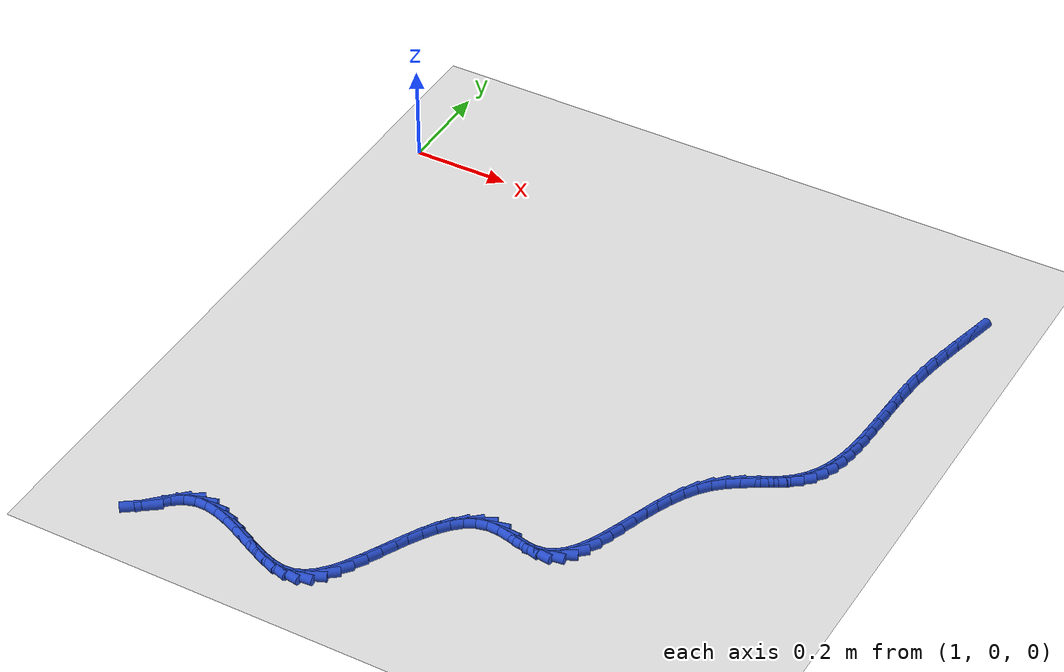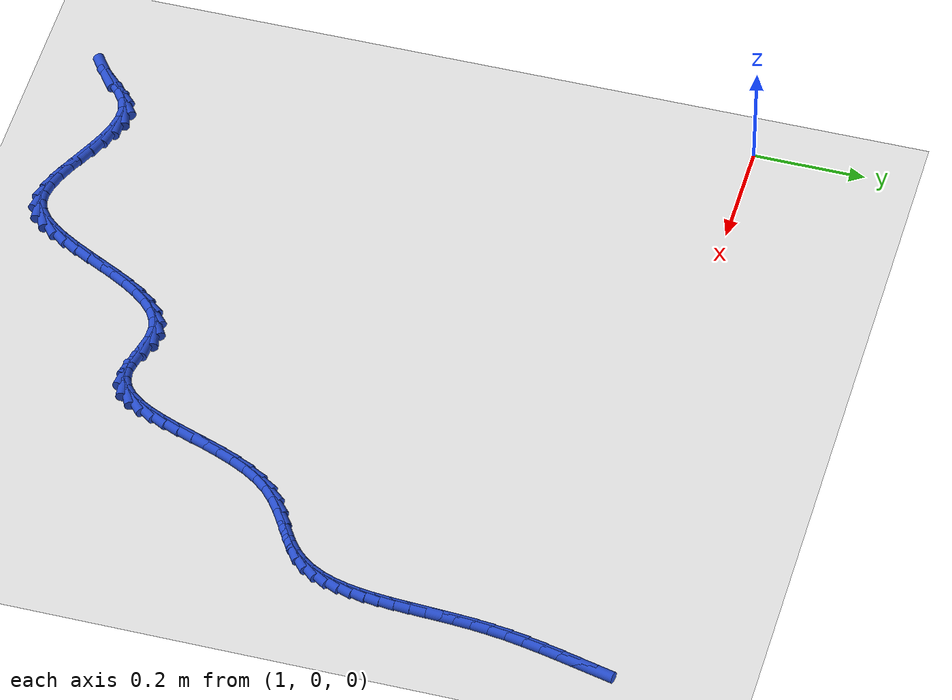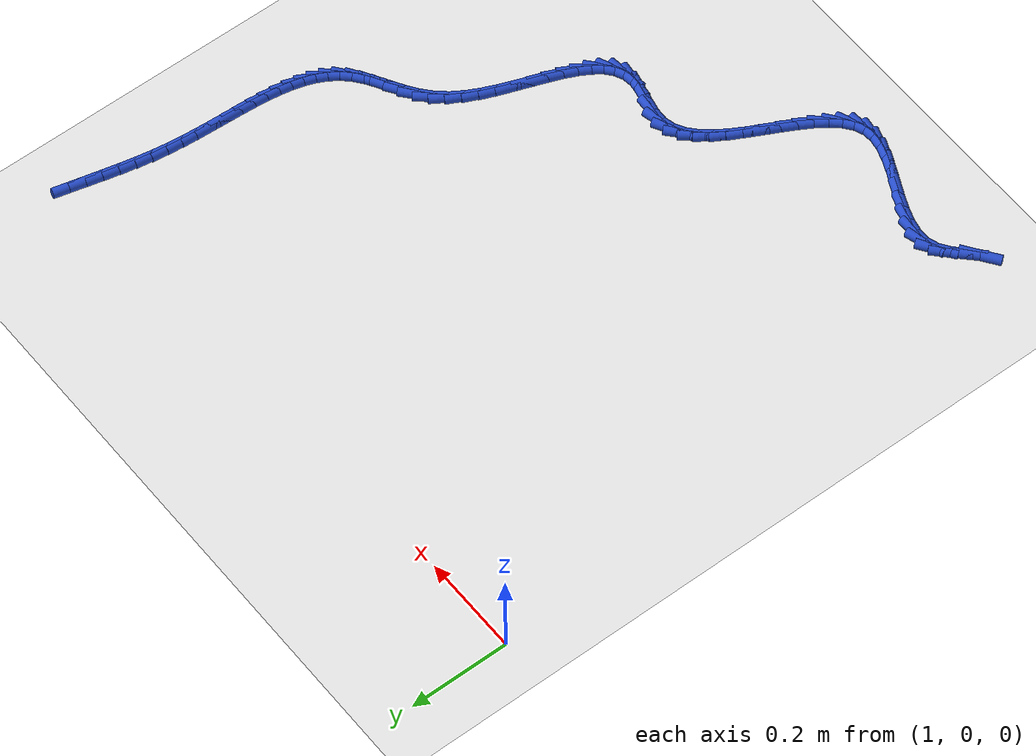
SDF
<sdf version="1.6">
 <world name="default">
  <model name="ground_plane">
   <static>1</static>
   <link name="link">
    <collision name="collision">
     <geometry><plane><normal>0 0 1</normal><size>100 100</size></plane></geometry>
     <surface><friction><ode><mu>100</mu><mu2>50</mu2></ode></friction></surface>
    </collision>
    <visual name="visual">
     <cast_shadows>0</cast_shadows>
     <geometry><plane><normal>0 0 1</normal><size>100 100</size></plane></geometry>
     <material>
      <script><uri>file://media/materials/scripts/gazebo.material</uri><name>Gazebo/WhiteGlow</name></script>
     </material>
    </visual>
   </link>
  </model>
  <model name="line">
   <link name="link_149">
    <pose>2.2256215976052123 0.027058477436590185 0.01 0 1.57 1.333727284681502</pose>
    <collision name="collision">
     <geometry><cylinder><radius>0.01</radius><length>0.08</length></cylinder></geometry>
    </collision>
    <visual name="visual">
     <material>
      <script><name>Gazebo/Blue</name><uri>file://media/materials/scripts/gazebo.material</uri></script>
     </material>
     <geometry><cylinder><radius>0.01</radius><length>0.08</length></cylinder></geometry>
    </visual>
   </link>
   <link name="link_150">
    <pose>2.218246953136106 -0.0034641418414901246 0.01 0 1.57 1.3360717553198445</pose>
    <collision name="collision">
     <geometry><cylinder><radius>0.01</radius><length>0.08</length></cylinder></geometry>
    </collision>
    <visual name="visual">
     <material>
      <script><name>Gazebo/Blue</name><uri>file://media/materials/scripts/gazebo.material</uri></script>
     </material>
     <geometry><cylinder><radius>0.01</radius><length>0.08</length></cylinder></geometry>
    </visual>
   </link>
   <link name="link_151">
    <pose>2.210850045025605 -0.03439639877539481 0.01 0 1.57 1.346496464220471</pose>
    <collision name="collision">
     <geometry><cylinder><radius>0.01</radius><length>0.08</length></cylinder></geometry>
    </collision>
    <visual name="visual">
     <material>
      <script><name>Gazebo/Blue</name><uri>file://media/materials/scripts/gazebo.material</uri></script>
     </material>
     <geometry><cylinder><radius>0.01</radius><length>0.08</length></cylinder></geometry>
    </visual>
   </link>
   <link name="link_152">
    <pose>2.2037306329552244 -0.06560290980595267 0.01 0 1.57 1.3650380783194875</pose>
    <collision name="collision">
     <geometry><cylinder><radius>0.01</radius><length>0.08</length></cylinder></geometry>
    </collision>
    <visual name="visual">
     <material>
      <script><name>Gazebo/Blue</name><uri>file://media/materials/scripts/gazebo.material</uri></script>
     </material>
     <geometry><cylinder><radius>0.01</radius><length>0.08</length></cylinder></geometry>
    </visual>
   </link>
   <link name="link_153">
    <pose>2.1971884766064766 -0.09694829137399548 0.01 0 1.57 1.3920130711602396</pose>
    <collision name="collision">
     <geometry><cylinder><radius>0.01</radius><length>0.08</length></cylinder></geometry>
    </collision>
    <visual name="visual">
     <material>
      <script><name>Gazebo/Blue</name><uri>file://media/materials/scripts/gazebo.material</uri></script>
     </material>
     <geometry><cylinder><radius>0.01</radius><length>0.08</length></cylinder></geometry>
    </visual>
   </link>
   <link name="link_154">
    <pose>2.191523335660877 -0.12829715992035212 0.01 0 1.57 1.427799531504343</pose>
    <collision name="collision">
     <geometry><cylinder><radius>0.01</radius><length>0.08</length></cylinder></geometry>
    </collision>
    <visual name="visual">
     <material>
      <script><name>Gazebo/Blue</name><uri>file://media/materials/scripts/gazebo.material</uri></script>
     </material>
     <geometry><cylinder><radius>0.01</radius><length>0.08</length></cylinder></geometry>
    </visual>
   </link>
   <link name="link_155">
    <pose>2.187028710561135 -0.15951427745770602 0.01 0 1.57 1.4651808868834704</pose>
    <collision name="collision">
     <geometry><cylinder><radius>0.01</radius><length>0.08</length></cylinder></geometry>
    </collision>
    <visual name="visual">
     <material>
      <script><name>Gazebo/Blue</name><uri>file://media/materials/scripts/gazebo.material</uri></script>
     </material>
     <geometry><cylinder><radius>0.01</radius><length>0.08</length></cylinder></geometry>
    </visual>
   </link>
   <link name="link_156">
    <pose>2.1837470716154646 -0.19047024423612238 0.01 0 1.57 1.4938609037108412</pose>
    <collision name="collision">
     <geometry><cylinder><radius>0.01</radius><length>0.08</length></cylinder></geometry>
    </collision>
    <visual name="visual">
     <material>
      <script><name>Gazebo/Blue</name><uri>file://media/materials/scripts/gazebo.material</uri></script>
     </material>
     <geometry><cylinder><radius>0.01</radius><length>0.08</length></cylinder></geometry>
    </visual>
   </link>
   <link name="link_157">
    <pose>2.1813902649362755 -0.22104334987150034 0.01 0 1.57 1.5129049713531644</pose>
    <collision name="collision">
     <geometry><cylinder><radius>0.01</radius><length>0.08</length></cylinder></geometry>
    </collision>
    <visual name="visual">
     <material>
      <script><name>Gazebo/Blue</name><uri>file://media/materials/scripts/gazebo.material</uri></script>
     </material>
     <geometry><cylinder><radius>0.01</radius><length>0.08</length></cylinder></geometry>
    </visual>
   </link>
   <link name="link_158">
    <pose>2.179647579116696 -0.2511124086026196 0.01 0 1.57 1.521953094276318</pose>
    <collision name="collision">
     <geometry><cylinder><radius>0.01</radius><length>0.08</length></cylinder></geometry>
    </collision>
    <visual name="visual">
     <material>
      <script><name>Gazebo/Blue</name><uri>file://media/materials/scripts/gazebo.material</uri></script>
     </material>
     <geometry><cylinder><radius>0.01</radius><length>0.08</length></cylinder></geometry>
    </visual>
   </link>
   <link name="link_159">
    <pose>2.178208302749855 -0.2805562346682595 0.01 0 1.57 1.520430977802554</pose>
    <collision name="collision">
     <geometry><cylinder><radius>0.01</radius><length>0.08</length></cylinder></geometry>
    </collision>
    <visual name="visual">
     <material>
      <script><name>Gazebo/Blue</name><uri>file://media/materials/scripts/gazebo.material</uri></script>
     </material>
     <geometry><cylinder><radius>0.01</radius><length>0.08</length></cylinder></geometry>
    </visual>
   </link>
   <link name="link_160">
    <pose>2.176761724428882 -0.3092536423072001 0.01 0 1.57 1.5074745505220806</pose>
    <collision name="collision">
     <geometry><cylinder><radius>0.01</radius><length>0.08</length></cylinder></geometry>
    </collision>
    <visual name="visual">
     <material>
      <script><name>Gazebo/Blue</name><uri>file://media/materials/scripts/gazebo.material</uri></script>
     </material>
     <geometry><cylinder><radius>0.01</radius><length>0.08</length></cylinder></geometry>
    </visual>
   </link>
   <link name="link_161">
    <pose>2.174997132746905 -0.3370834457582207 0.01 0 1.57 1.4818651196186232</pose>
    <collision name="collision">
     <geometry><cylinder><radius>0.01</radius><length>0.08</length></cylinder></geometry>
    </collision>
    <visual name="visual">
     <material>
      <script><name>Gazebo/Blue</name><uri>file://media/materials/scripts/gazebo.material</uri></script>
     </material>
     <geometry><cylinder><radius>0.01</radius><length>0.08</length></cylinder></geometry>
    </visual>
   </link>
   <link name="link_162">
    <pose>2.172603816297054 -0.3639244592601012 0.01 0 1.57 1.4419907520625899</pose>
    <collision name="collision">
     <geometry><cylinder><radius>0.01</radius><length>0.08</length></cylinder></geometry>
    </collision>
    <visual name="visual">
     <material>
      <script><name>Gazebo/Blue</name><uri>file://media/materials/scripts/gazebo.material</uri></script>
     </material>
     <geometry><cylinder><radius>0.01</radius><length>0.08</length></cylinder></geometry>
    </visual>
   </link>
   <link name="link_163">
    <pose>2.169271063672457 -0.38965549705162117 0.01 0 1.57 1.3858753072969408</pose>
    <collision name="collision">
     <geometry><cylinder><radius>0.01</radius><length>0.08</length></cylinder></geometry>
    </collision>
    <visual name="visual">
     <material>
      <script><name>Gazebo/Blue</name><uri>file://media/materials/scripts/gazebo.material</uri></script>
     </material>
     <geometry><cylinder><radius>0.01</radius><length>0.08</length></cylinder></geometry>
    </visual>
   </link>
   <link name="link_164">
    <pose>2.1646881634662427 -0.4141553733715604 0.01 0 1.57 1.311360536074659</pose>
    <collision name="collision">
     <geometry><cylinder><radius>0.01</radius><length>0.08</length></cylinder></geometry>
    </collision>
    <visual name="visual">
     <material>
      <script><name>Gazebo/Blue</name><uri>file://media/materials/scripts/gazebo.material</uri></script>
     </material>
     <geometry><cylinder><radius>0.01</radius><length>0.08</length></cylinder></geometry>
    </visual>
   </link>
   <link name="link_165">
    <pose>2.158544404271541 -0.4373029024586984 0.01 0 1.57 1.2165807347374298</pose>
    <collision name="collision">
     <geometry><cylinder><radius>0.01</radius><length>0.08</length></cylinder></geometry>
    </collision>
    <visual name="visual">
     <material>
      <script><name>Gazebo/Blue</name><uri>file://media/materials/scripts/gazebo.material</uri></script>
     </material>
     <geometry><cylinder><radius>0.01</radius><length>0.08</length></cylinder></geometry>
    </visual>
   </link>
   <link name="link_166">
    <pose>2.1505290746814802 -0.4589768985518149 0.01 0 1.57 1.1008745844423444</pose>
    <collision name="collision">
     <geometry><cylinder><radius>0.01</radius><length>0.08</length></cylinder></geometry>
    </collision>
    <visual name="visual">
     <material>
      <script><name>Gazebo/Blue</name><uri>file://media/materials/scripts/gazebo.material</uri></script>
     </material>
     <geometry><cylinder><radius>0.01</radius><length>0.08</length></cylinder></geometry>
    </visual>
   </link>
   <link name="link_167">
    <pose>2.1403314632891886 -0.4790561758896894 0.01 0 1.57 0.9660804048956914</pose>
    <collision name="collision">
     <geometry><cylinder><radius>0.01</radius><length>0.08</length></cylinder></geometry>
    </collision>
    <visual name="visual">
     <material>
      <script><name>Gazebo/Blue</name><uri>file://media/materials/scripts/gazebo.material</uri></script>
     </material>
     <geometry><cylinder><radius>0.01</radius><length>0.08</length></cylinder></geometry>
    </visual>
   </link>
   <link name="link_168">
    <pose>2.127640858687796 -0.4974195487111017 0.01 0 1.57 0.8176154397921168</pose>
    <collision name="collision">
     <geometry><cylinder><radius>0.01</radius><length>0.08</length></cylinder></geometry>
    </collision>
    <visual name="visual">
     <material>
      <script><name>Gazebo/Blue</name><uri>file://media/materials/scripts/gazebo.material</uri></script>
     </material>
     <geometry><cylinder><radius>0.01</radius><length>0.08</length></cylinder></geometry>
    </visual>
   </link>
   <link name="link_169">
    <pose>2.112146549470432 -0.5139458312548311 0.01 0 1.57 0.6702721823000657</pose>
    <collision name="collision">
     <geometry><cylinder><radius>0.01</radius><length>0.08</length></cylinder></geometry>
    </collision>
    <visual name="visual">
     <material>
      <script><name>Gazebo/Blue</name><uri>file://media/materials/scripts/gazebo.material</uri></script>
     </material>
     <geometry><cylinder><radius>0.01</radius><length>0.08</length></cylinder></geometry>
    </visual>
   </link>
   <link name="link_170">
    <pose>2.0936511909194424 -0.5286070518992797 0.01 0 1.57 0.5722148538214556</pose>
    <collision name="collision">
     <geometry><cylinder><radius>0.01</radius><length>0.08</length></cylinder></geometry>
    </collision>
    <visual name="visual">
     <material>
      <script><name>Gazebo/Blue</name><uri>file://media/materials/scripts/gazebo.material</uri></script>
     </material>
     <geometry><cylinder><radius>0.01</radius><length>0.08</length></cylinder></geometry>
    </visual>
   </link>
   <link name="link_171">
    <pose>2.072779019018258 -0.542050772009733 0.01 0 1.57 0.5342446240558337</pose>
    <collision name="collision">
     <geometry><cylinder><radius>0.01</radius><length>0.08</length></cylinder></geometry>
    </collision>
    <visual name="visual">
     <material>
      <script><name>Gazebo/Blue</name><uri>file://media/materials/scripts/gazebo.material</uri></script>
     </material>
     <geometry><cylinder><radius>0.01</radius><length>0.08</length></cylinder></geometry>
    </visual>
   </link>
   <link name="link_172">
    <pose>2.0505162331319204 -0.5552221721677024 0.01 0 1.57 0.5483676740057903</pose>
    <collision name="collision">
     <geometry><cylinder><radius>0.01</radius><length>0.08</length></cylinder></geometry>
    </collision>
    <visual name="visual">
     <material>
      <script><name>Gazebo/Blue</name><uri>file://media/materials/scripts/gazebo.material</uri></script>
     </material>
     <geometry><cylinder><radius>0.01</radius><length>0.08</length></cylinder></geometry>
    </visual>
   </link>
   <link name="link_173">
    <pose>2.027850609826262 -0.5690677297855049 0.01 0 1.57 0.6110211469548562</pose>
    <collision name="collision">
     <geometry><cylinder><radius>0.01</radius><length>0.08</length></cylinder></geometry>
    </collision>
    <visual name="visual">
     <material>
      <script><name>Gazebo/Blue</name><uri>file://media/materials/scripts/gazebo.material</uri></script>
     </material>
     <geometry><cylinder><radius>0.01</radius><length>0.08</length></cylinder></geometry>
    </visual>
   </link>
   <link name="link_174">
    <pose>2.0057699256671158 -0.5845339222754566 0.01 0 1.57 0.7212780371123108</pose>
    <collision name="collision">
     <geometry><cylinder><radius>0.01</radius><length>0.08</length></cylinder></geometry>
    </collision>
    <visual name="visual">
     <material>
      <script><name>Gazebo/Blue</name><uri>file://media/materials/scripts/gazebo.material</uri></script>
     </material>
     <geometry><cylinder><radius>0.01</radius><length>0.08</length></cylinder></geometry>
    </visual>
   </link>
   <link name="link_175">
    <pose>1.9852619572203154 -0.6025672270498744 0.01 0 1.57 0.8692368693558528</pose>
    <collision name="collision">
     <geometry><cylinder><radius>0.01</radius><length>0.08</length></cylinder></geometry>
    </collision>
    <visual name="visual">
     <material>
      <script><name>Gazebo/Blue</name><uri>file://media/materials/scripts/gazebo.material</uri></script>
     </material>
     <geometry><cylinder><radius>0.01</radius><length>0.08</length></cylinder></geometry>
    </visual>
   </link>
   <link name="link_176">
    <pose>1.9671854617201905 -0.6239606002781991 0.01 0 1.57 1.0004553980119146</pose>
    <collision name="collision">
     <geometry><cylinder><radius>0.01</radius><length>0.08</length></cylinder></geometry>
    </collision>
    <visual name="visual">
     <material>
      <script><name>Gazebo/Blue</name><uri>file://media/materials/scripts/gazebo.material</uri></script>
     </material>
     <geometry><cylinder><radius>0.01</radius><length>0.08</length></cylinder></geometry>
    </visual>
   </link>
   <link name="link_177">
    <pose>1.9514915272435642 -0.6484269545770361 0.01 0 1.57 1.0965898747101739</pose>
    <collision name="collision">
     <geometry><cylinder><radius>0.01</radius><length>0.08</length></cylinder></geometry>
    </collision>
    <visual name="visual">
     <material>
      <script><name>Gazebo/Blue</name><uri>file://media/materials/scripts/gazebo.material</uri></script>
     </material>
     <geometry><cylinder><radius>0.01</radius><length>0.08</length></cylinder></geometry>
    </visual>
   </link>
   <link name="link_178">
    <pose>1.9377417003614694 -0.6752156836823368 0.01 0 1.57 1.1631690095735219</pose>
    <collision name="collision">
     <geometry><cylinder><radius>0.01</radius><length>0.08</length></cylinder></geometry>
    </collision>
    <visual name="visual">
     <material>
      <script><name>Gazebo/Blue</name><uri>file://media/materials/scripts/gazebo.material</uri></script>
     </material>
     <geometry><cylinder><radius>0.01</radius><length>0.08</length></cylinder></geometry>
    </visual>
   </link>
   <link name="link_179">
    <pose>1.9254960315048544 -0.7035744010597448 0.01 0 1.57 1.204823344957516</pose>
    <collision name="collision">
     <geometry><cylinder><radius>0.01</radius><length>0.08</length></cylinder></geometry>
    </collision>
    <visual name="visual">
     <material>
      <script><name>Gazebo/Blue</name><uri>file://media/materials/scripts/gazebo.material</uri></script>
     </material>
     <geometry><cylinder><radius>0.01</radius><length>0.08</length></cylinder></geometry>
    </visual>
   </link>
   <link name="link_180">
    <pose>1.9143145711046698 -0.7327507201749045 0.01 0 1.57 1.2243252739798667</pose>
    <collision name="collision">
     <geometry><cylinder><radius>0.01</radius><length>0.08</length></cylinder></geometry>
    </collision>
    <visual name="visual">
     <material>
      <script><name>Gazebo/Blue</name><uri>file://media/materials/scripts/gazebo.material</uri></script>
     </material>
     <geometry><cylinder><radius>0.01</radius><length>0.08</length></cylinder></geometry>
    </visual>
   </link>
   <link name="link_181">
    <pose>1.9037573695918661 -0.7619922544934606 0.01 0 1.57 1.2223505234405576</pose>
    <collision name="collision">
     <geometry><cylinder><radius>0.01</radius><length>0.08</length></cylinder></geometry>
    </collision>
    <visual name="visual">
     <material>
      <script><name>Gazebo/Blue</name><uri>file://media/materials/scripts/gazebo.material</uri></script>
     </material>
     <geometry><cylinder><radius>0.01</radius><length>0.08</length></cylinder></geometry>
    </visual>
   </link>
   <link name="link_182">
    <pose>1.8933844773973907 -0.7905466174810567 0.01 0 1.57 1.1972205309336714</pose>
    <collision name="collision">
     <geometry><cylinder><radius>0.01</radius><length>0.08</length></cylinder></geometry>
    </collision>
    <visual name="visual">
     <material>
      <script><name>Gazebo/Blue</name><uri>file://media/materials/scripts/gazebo.material</uri></script>
     </material>
     <geometry><cylinder><radius>0.01</radius><length>0.08</length></cylinder></geometry>
    </visual>
   </link>
   <link name="link_183">
    <pose>1.8827559449521967 -0.8176614226033379 0.01 0 1.57 1.1443168470619836</pose>
    <collision name="collision">
     <geometry><cylinder><radius>0.01</radius><length>0.08</length></cylinder></geometry>
    </collision>
    <visual name="visual">
     <material>
      <script><name>Gazebo/Blue</name><uri>file://media/materials/scripts/gazebo.material</uri></script>
     </material>
     <geometry><cylinder><radius>0.01</radius><length>0.08</length></cylinder></geometry>
    </visual>
   </link>
   <link name="link_184">
    <pose>1.8714318226872324 -0.842584283325947 0.01 0 1.57 1.05506957770016</pose>
    <collision name="collision">
     <geometry><cylinder><radius>0.01</radius><length>0.08</length></cylinder></geometry>
    </collision>
    <visual name="visual">
     <material>
      <script><name>Gazebo/Blue</name><uri>file://media/materials/scripts/gazebo.material</uri></script>
     </material>
     <geometry><cylinder><radius>0.01</radius><length>0.08</length></cylinder></geometry>
    </visual>
   </link>
   <link name="link_185">
    <pose>1.8589721610334469 -0.8645628131145302 0.01 0 1.57 0.9160561258070224</pose>
    <collision name="collision">
     <geometry><cylinder><radius>0.01</radius><length>0.08</length></cylinder></geometry>
    </collision>
    <visual name="visual">
     <material>
      <script><name>Gazebo/Blue</name><uri>file://media/materials/scripts/gazebo.material</uri></script>
     </material>
     <geometry><cylinder><radius>0.01</radius><length>0.08</length></cylinder></geometry>
    </visual>
   </link>
   <link name="link_186">
    <pose>1.844937010421791 -0.8828446254347311 0.01 0 1.57 0.7113159118419592</pose>
    <collision name="collision">
     <geometry><cylinder><radius>0.01</radius><length>0.08</length></cylinder></geometry>
    </collision>
    <visual name="visual">
     <material>
      <script><name>Gazebo/Blue</name><uri>file://media/materials/scripts/gazebo.material</uri></script>
     </material>
     <geometry><cylinder><radius>0.01</radius><length>0.08</length></cylinder></geometry>
    </visual>
   </link>
   <link name="link_187">
    <pose>1.8288864212832139 -0.8966773337521936 0.01 0 1.57 0.4364094907190047</pose>
    <collision name="collision">
     <geometry><cylinder><radius>0.01</radius><length>0.08</length></cylinder></geometry>
    </collision>
    <visual name="visual">
     <material>
      <script><name>Gazebo/Blue</name><uri>file://media/materials/scripts/gazebo.material</uri></script>
     </material>
     <geometry><cylinder><radius>0.01</radius><length>0.08</length></cylinder></geometry>
    </visual>
   </link>
   <link name="link_188">
    <pose>1.8103804440486666 -0.9053085515325625 0.01 0 1.57 0.12445516225766469</pose>
    <collision name="collision">
     <geometry><cylinder><radius>0.01</radius><length>0.08</length></cylinder></geometry>
    </collision>
    <visual name="visual">
     <material>
      <script><name>Gazebo/Blue</name><uri>file://media/materials/scripts/gazebo.material</uri></script>
     </material>
     <geometry><cylinder><radius>0.01</radius><length>0.08</length></cylinder></geometry>
    </visual>
   </link>
   <link name="link_189">
    <pose>1.7889791295303126 -0.9079858930909466 0.01 0 1.57 -0.13317322252864308</pose>
    <collision name="collision">
     <geometry><cylinder><radius>0.01</radius><length>0.08</length></cylinder></geometry>
    </collision>
    <visual name="visual">
     <material>
      <script><name>Gazebo/Blue</name><uri>file://media/materials/scripts/gazebo.material</uri></script>
     </material>
     <geometry><cylinder><radius>0.01</radius><length>0.08</length></cylinder></geometry>
    </visual>
   </link>
   <link name="link_190">
    <pose>1.7645839492948876 -0.904717765243887 0.01 0 1.57 -0.23470726215746032</pose>
    <collision name="collision">
     <geometry><cylinder><radius>0.01</radius><length>0.08</length></cylinder></geometry>
    </collision>
    <visual name="visual">
     <material>
      <script><name>Gazebo/Blue</name><uri>file://media/materials/scripts/gazebo.material</uri></script>
     </material>
     <geometry><cylinder><radius>0.01</radius><length>0.08</length></cylinder></geometry>
    </visual>
   </link>
   <link name="link_191">
    <pose>1.7384197821737435 -0.8984615411779361 0.01 0 1.57 -0.20812151438656515</pose>
    <collision name="collision">
     <geometry><cylinder><radius>0.01</radius><length>0.08</length></cylinder></geometry>
    </collision>
    <visual name="visual">
     <material>
      <script><name>Gazebo/Blue</name><uri>file://media/materials/scripts/gazebo.material</uri></script>
     </material>
     <geometry><cylinder><radius>0.01</radius><length>0.08</length></cylinder></geometry>
    </visual>
   </link>
   <link name="link_192">
    <pose>1.7120321150623499 -0.8928890093804576 0.01 0 1.57 -0.048706695483920176</pose>
    <collision name="collision">
     <geometry><cylinder><radius>0.01</radius><length>0.08</length></cylinder></geometry>
    </collision>
    <visual name="visual">
     <material>
      <script><name>Gazebo/Blue</name><uri>file://media/materials/scripts/gazebo.material</uri></script>
     </material>
     <geometry><cylinder><radius>0.01</radius><length>0.08</length></cylinder></geometry>
    </visual>
   </link>
   <link name="link_193">
    <pose>1.6869644742052388 -0.8916670810004584 0.01 0 1.57 0.23852289001032997</pose>
    <collision name="collision">
     <geometry><cylinder><radius>0.01</radius><length>0.08</length></cylinder></geometry>
    </collision>
    <visual name="visual">
     <material>
      <script><name>Gazebo/Blue</name><uri>file://media/materials/scripts/gazebo.material</uri></script>
     </material>
     <geometry><cylinder><radius>0.01</radius><length>0.08</length></cylinder></geometry>
    </visual>
   </link>
   <link name="link_194">
    <pose>1.6642489448528577 -0.897190400549232 0.01 0 1.57 0.518038861552839</pose>
    <collision name="collision">
     <geometry><cylinder><radius>0.01</radius><length>0.08</length></cylinder></geometry>
    </collision>
    <visual name="visual">
     <material>
      <script><name>Gazebo/Blue</name><uri>file://media/materials/scripts/gazebo.material</uri></script>
     </material>
     <geometry><cylinder><radius>0.01</radius><length>0.08</length></cylinder></geometry>
    </visual>
   </link>
   <link name="link_195">
    <pose>1.6437254533564631 -0.9088879840260089 0.01 0 1.57 0.7353019754065192</pose>
    <collision name="collision">
     <geometry><cylinder><radius>0.01</radius><length>0.08</length></cylinder></geometry>
    </collision>
    <visual name="visual">
     <material>
      <script><name>Gazebo/Blue</name><uri>file://media/materials/scripts/gazebo.material</uri></script>
     </material>
     <geometry><cylinder><radius>0.01</radius><length>0.08</length></cylinder></geometry>
    </visual>
   </link>
   <link name="link_196">
    <pose>1.625064395919771 -0.9257671222392403 0.01 0 1.57 0.8881799157268385</pose>
    <collision name="collision">
     <geometry><cylinder><radius>0.01</radius><length>0.08</length></cylinder></geometry>
    </collision>
    <visual name="visual">
     <material>
      <script><name>Gazebo/Blue</name><uri>file://media/materials/scripts/gazebo.material</uri></script>
     </material>
     <geometry><cylinder><radius>0.01</radius><length>0.08</length></cylinder></geometry>
    </visual>
   </link>
   <link name="link_197">
    <pose>1.607936168746498 -0.9468351059973783 0.01 0 1.57 0.9899918128441954</pose>
    <collision name="collision">
     <geometry><cylinder><radius>0.01</radius><length>0.08</length></cylinder></geometry>
    </collision>
    <visual name="visual">
     <material>
      <script><name>Gazebo/Blue</name><uri>file://media/materials/scripts/gazebo.material</uri></script>
     </material>
     <geometry><cylinder><radius>0.01</radius><length>0.08</length></cylinder></geometry>
    </visual>
   </link>
   <link name="link_198">
    <pose>1.592011168040359 -0.9710992261088737 0.01 0 1.57 1.0537299972810694</pose>
    <collision name="collision">
     <geometry><cylinder><radius>0.01</radius><length>0.08</length></cylinder></geometry>
    </collision>
    <visual name="visual">
     <material>
      <script><name>Gazebo/Blue</name><uri>file://media/materials/scripts/gazebo.material</uri></script>
     </material>
     <geometry><cylinder><radius>0.01</radius><length>0.08</length></cylinder></geometry>
    </visual>
   </link>
   <link name="link_199">
    <pose>1.5769597900050718 -0.9975667733821789 0.01 0 1.57 1.0880216679999744</pose>
    <collision name="collision">
     <geometry><cylinder><radius>0.01</radius><length>0.08</length></cylinder></geometry>
    </collision>
    <visual name="visual">
     <material>
      <script><name>Gazebo/Blue</name><uri>file://media/materials/scripts/gazebo.material</uri></script>
     </material>
     <geometry><cylinder><radius>0.01</radius><length>0.08</length></cylinder></geometry>
    </visual>
   </link>
   <link name="link_200">
    <pose>1.5624524308443513 -1.0252450386257448 0.01 0 1.57 1.0973094219958495</pose>
    <collision name="collision">
     <geometry><cylinder><radius>0.01</radius><length>0.08</length></cylinder></geometry>
    </collision>
    <visual name="visual">
     <material>
      <script><name>Gazebo/Blue</name><uri>file://media/materials/scripts/gazebo.material</uri></script>
     </material>
     <geometry><cylinder><radius>0.01</radius><length>0.08</length></cylinder></geometry>
    </visual>
   </link>
   <link name="link_201">
    <pose>1.5481594867619148 -1.0531413126480225 0.01 0 1.57 1.0824682182792211</pose>
    <collision name="collision">
     <geometry><cylinder><radius>0.01</radius><length>0.08</length></cylinder></geometry>
    </collision>
    <visual name="visual">
     <material>
      <script><name>Gazebo/Blue</name><uri>file://media/materials/scripts/gazebo.material</uri></script>
     </material>
     <geometry><cylinder><radius>0.01</radius><length>0.08</length></cylinder></geometry>
    </visual>
   </link>
   <link name="link_202">
    <pose>1.5337513539614769 -1.0802628862574644 0.01 0 1.57 1.040870048344097</pose>
    <collision name="collision">
     <geometry><cylinder><radius>0.01</radius><length>0.08</length></cylinder></geometry>
    </collision>
    <visual name="visual">
     <material>
      <script><name>Gazebo/Blue</name><uri>file://media/materials/scripts/gazebo.material</uri></script>
     </material>
     <geometry><cylinder><radius>0.01</radius><length>0.08</length></cylinder></geometry>
    </visual>
   </link>
   <link name="link_203">
    <pose>1.5188984286467548 -1.1056170502625227 0.01 0 1.57 0.9656919017172607</pose>
    <collision name="collision">
     <geometry><cylinder><radius>0.01</radius><length>0.08</length></cylinder></geometry>
    </collision>
    <visual name="visual">
     <material>
      <script><name>Gazebo/Blue</name><uri>file://media/materials/scripts/gazebo.material</uri></script>
     </material>
     <geometry><cylinder><radius>0.01</radius><length>0.08</length></cylinder></geometry>
    </visual>
   </link>
   <link name="link_204">
    <pose>1.503271107021464 -1.1282110954716476 0.01 0 1.57 0.8446412362193856</pose>
    <collision name="collision">
     <geometry><cylinder><radius>0.01</radius><length>0.08</length></cylinder></geometry>
    </collision>
    <visual name="visual">
     <material>
      <script><name>Gazebo/Blue</name><uri>file://media/materials/scripts/gazebo.material</uri></script>
     </material>
     <geometry><cylinder><radius>0.01</radius><length>0.08</length></cylinder></geometry>
    </visual>
   </link>
   <link name="link_205">
    <pose>1.486539785289321 -1.147052312693291 0.01 0 1.57 0.6599241363769354</pose>
    <collision name="collision">
     <geometry><cylinder><radius>0.01</radius><length>0.08</length></cylinder></geometry>
    </collision>
    <visual name="visual">
     <material>
      <script><name>Gazebo/Blue</name><uri>file://media/materials/scripts/gazebo.material</uri></script>
     </material>
     <geometry><cylinder><radius>0.01</radius><length>0.08</length></cylinder></geometry>
    </visual>
   </link>
   <link name="link_206">
    <pose>1.468374859654042 -1.1611479927359052 0.01 0 1.57 0.39709969591586347</pose>
    <collision name="collision">
     <geometry><cylinder><radius>0.01</radius><length>0.08</length></cylinder></geometry>
    </collision>
    <visual name="visual">
     <material>
      <script><name>Gazebo/Blue</name><uri>file://media/materials/scripts/gazebo.material</uri></script>
     </material>
     <geometry><cylinder><radius>0.01</radius><length>0.08</length></cylinder></geometry>
    </visual>
   </link>
   <link name="link_207">
    <pose>1.4484467263193423 -1.16950542640794 0.01 0 1.57 0.08391954462489691</pose>
    <collision name="collision">
     <geometry><cylinder><radius>0.01</radius><length>0.08</length></cylinder></geometry>
    </collision>
    <visual name="visual">
     <material>
      <script><name>Gazebo/Blue</name><uri>file://media/materials/scripts/gazebo.material</uri></script>
     </material>
     <geometry><cylinder><radius>0.01</radius><length>0.08</length></cylinder></geometry>
    </visual>
   </link>
   <link name="link_208">
    <pose>1.4264925673082982 -1.171352146641068 0.01 0 1.57 -0.1631058097794592</pose>
    <collision name="collision">
     <geometry><cylinder><radius>0.01</radius><length>0.08</length></cylinder></geometry>
    </collision>
    <visual name="visual">
     <material>
      <script><name>Gazebo/Blue</name><uri>file://media/materials/scripts/gazebo.material</uri></script>
     </material>
     <geometry><cylinder><radius>0.01</radius><length>0.08</length></cylinder></geometry>
    </visual>
   </link>
   <link name="link_209">
    <pose>1.4027113472766202 -1.167438524425312 0.01 0 1.57 -0.3172935262456444</pose>
    <collision name="collision">
     <geometry><cylinder><radius>0.01</radius><length>0.08</length></cylinder></geometry>
    </collision>
    <visual name="visual">
     <material>
      <script><name>Gazebo/Blue</name><uri>file://media/materials/scripts/gazebo.material</uri></script>
     </material>
     <geometry><cylinder><radius>0.01</radius><length>0.08</length></cylinder></geometry>
    </visual>
   </link>
   <link name="link_210">
    <pose>1.3774971810604788 -1.159158484883948 0.01 0 1.57 -0.40486786001667086</pose>
    <collision name="collision">
     <geometry><cylinder><radius>0.01</radius><length>0.08</length></cylinder></geometry>
    </collision>
    <visual name="visual">
     <material>
      <script><name>Gazebo/Blue</name><uri>file://media/materials/scripts/gazebo.material</uri></script>
     </material>
     <geometry><cylinder><radius>0.01</radius><length>0.08</length></cylinder></geometry>
    </visual>
   </link>
   <link name="link_211">
    <pose>1.3512448772704395 -1.1479082410263215 0.01 0 1.57 -0.4449279907479649</pose>
    <collision name="collision">
     <geometry><cylinder><radius>0.01</radius><length>0.08</length></cylinder></geometry>
    </collision>
    <visual name="visual">
     <material>
      <script><name>Gazebo/Blue</name><uri>file://media/materials/scripts/gazebo.material</uri></script>
     </material>
     <geometry><cylinder><radius>0.01</radius><length>0.08</length></cylinder></geometry>
    </visual>
   </link>
   <link name="link_212">
    <pose>1.3243492445170684 -1.1350840058617784 0.01 0 1.57 -0.4467058393032578</pose>
    <collision name="collision">
     <geometry><cylinder><radius>0.01</radius><length>0.08</length></cylinder></geometry>
    </collision>
    <visual name="visual">
     <material>
      <script><name>Gazebo/Blue</name><uri>file://media/materials/scripts/gazebo.material</uri></script>
     </material>
     <geometry><cylinder><radius>0.01</radius><length>0.08</length></cylinder></geometry>
    </visual>
   </link>
   <link name="link_213">
    <pose>1.29720509141093 -1.1220819923996646 0.01 0 1.57 -0.41154001095067727</pose>
    <collision name="collision">
     <geometry><cylinder><radius>0.01</radius><length>0.08</length></cylinder></geometry>
    </collision>
    <visual name="visual">
     <material>
      <script><name>Gazebo/Blue</name><uri>file://media/materials/scripts/gazebo.material</uri></script>
     </material>
     <geometry><cylinder><radius>0.01</radius><length>0.08</length></cylinder></geometry>
    </visual>
   </link>
   <link name="link_214">
    <pose>1.2702072265625906 -1.1102984136493255 0.01 0 1.57 -0.3336094312535661</pose>
    <collision name="collision">
     <geometry><cylinder><radius>0.01</radius><length>0.08</length></cylinder></geometry>
    </collision>
    <visual name="visual">
     <material>
      <script><name>Gazebo/Blue</name><uri>file://media/materials/scripts/gazebo.material</uri></script>
     </material>
     <geometry><cylinder><radius>0.01</radius><length>0.08</length></cylinder></geometry>
    </visual>
   </link>
   <link name="link_215">
    <pose>1.2437504585826151 -1.101129482620107 0.01 0 1.57 -0.19942541662779575</pose>
    <collision name="collision">
     <geometry><cylinder><radius>0.01</radius><length>0.08</length></cylinder></geometry>
    </collision>
    <visual name="visual">
     <material>
      <script><name>Gazebo/Blue</name><uri>file://media/materials/scripts/gazebo.material</uri></script>
     </material>
     <geometry><cylinder><radius>0.01</radius><length>0.08</length></cylinder></geometry>
    </visual>
   </link>
   <link name="link_216">
    <pose>1.2182295960815703 -1.0959714123213553 0.01 0 1.57 0.010293225272989447</pose>
    <collision name="collision">
     <geometry><cylinder><radius>0.01</radius><length>0.08</length></cylinder></geometry>
    </collision>
    <visual name="visual">
     <material>
      <script><name>Gazebo/Blue</name><uri>file://media/materials/scripts/gazebo.material</uri></script>
     </material>
     <geometry><cylinder><radius>0.01</radius><length>0.08</length></cylinder></geometry>
    </visual>
   </link>
   <link name="link_217">
    <pose>1.1940394476700202 -1.0962204157624165 0.01 0 1.57 0.3041859073919152</pose>
    <collision name="collision">
     <geometry><cylinder><radius>0.01</radius><length>0.08</length></cylinder></geometry>
    </collision>
    <visual name="visual">
     <material>
      <script><name>Gazebo/Blue</name><uri>file://media/materials/scripts/gazebo.material</uri></script>
     </material>
     <geometry><cylinder><radius>0.01</radius><length>0.08</length></cylinder></geometry>
    </visual>
   </link>
   <link name="link_218">
    <pose>1.1715748219585302 -1.1032727059526353 0.01 0 1.57 0.6152667390325327</pose>
    <collision name="collision">
     <geometry><cylinder><radius>0.01</radius><length>0.08</length></cylinder></geometry>
    </collision>
    <visual name="visual">
     <material>
      <script><name>Gazebo/Blue</name><uri>file://media/materials/scripts/gazebo.material</uri></script>
     </material>
     <geometry><cylinder><radius>0.01</radius><length>0.08</length></cylinder></geometry>
    </visual>
   </link>
   <link name="link_219">
    <pose>1.1510588602717682 -1.1177731286552335 0.01 0 1.57 0.7723816781086253</pose>
    <collision name="collision">
     <geometry><cylinder><radius>0.01</radius><length>0.08</length></cylinder></geometry>
    </collision>
    <visual name="visual">
     <material>
      <script><name>Gazebo/Blue</name><uri>file://media/materials/scripts/gazebo.material</uri></script>
     </material>
     <geometry><cylinder><radius>0.01</radius><length>0.08</length></cylinder></geometry>
    </visual>
   </link>
   <link name="link_220">
    <pose>1.1318325271375733 -1.1365053469569864 0.01 0 1.57 0.7755693294152612</pose>
    <collision name="collision">
     <geometry><cylinder><radius>0.01</radius><length>0.08</length></cylinder></geometry>
    </collision>
    <visual name="visual">
     <material>
      <script><name>Gazebo/Blue</name><uri>file://media/materials/scripts/gazebo.material</uri></script>
     </material>
     <geometry><cylinder><radius>0.01</radius><length>0.08</length></cylinder></geometry>
    </visual>
   </link>
   <link name="link_221">
    <pose>1.1129541993540732 -1.1550161711386615 0.01 0 1.57 0.622012074746636</pose>
    <collision name="collision">
     <geometry><cylinder><radius>0.01</radius><length>0.08</length></cylinder></geometry>
    </collision>
    <visual name="visual">
     <material>
      <script><name>Gazebo/Blue</name><uri>file://media/materials/scripts/gazebo.material</uri></script>
     </material>
     <geometry><cylinder><radius>0.01</radius><length>0.08</length></cylinder></geometry>
    </visual>
   </link>
  </model>
 </world>
</sdf>
